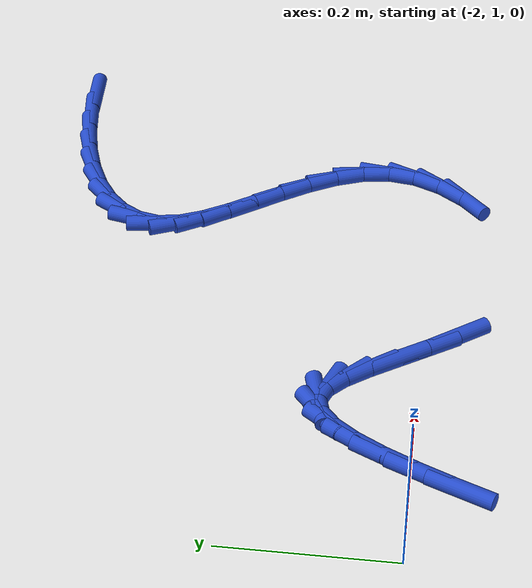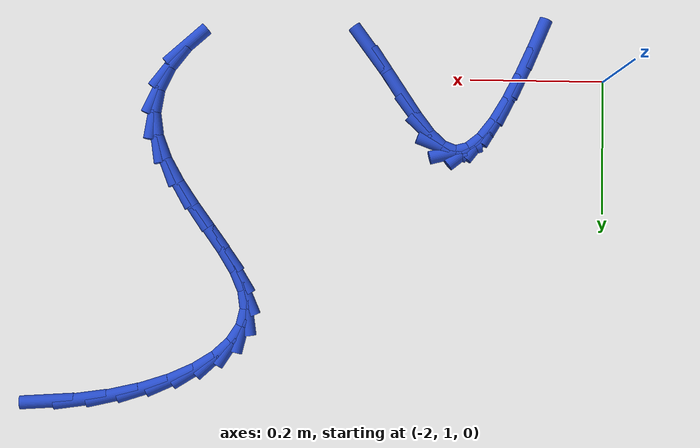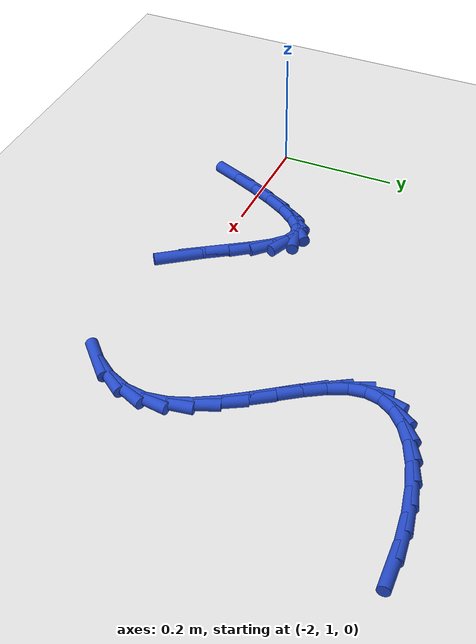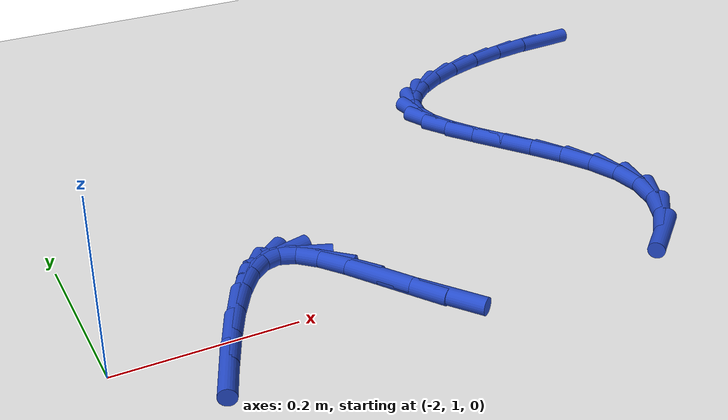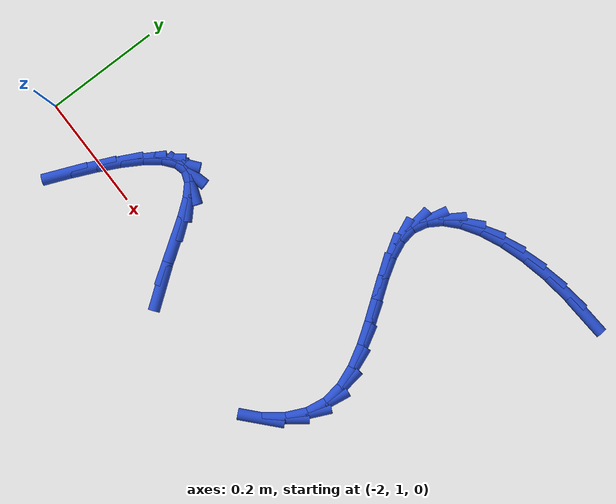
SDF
<sdf version="1.6">
 <world name="default">
  <model name="ground_plane">
   <static>1</static>
   <link name="link">
    <collision name="collision">
     <geometry><plane><normal>0 0 1</normal><size>100 100</size></plane></geometry>
     <surface><friction><ode><mu>100</mu><mu2>50</mu2></ode></friction></surface>
    </collision>
    <visual name="visual">
     <cast_shadows>0</cast_shadows>
     <geometry><plane><normal>0 0 1</normal><size>100 100</size></plane></geometry>
     <material>
      <script><uri>file://media/materials/scripts/gazebo.material</uri><name>Gazebo/WhiteGlow</name></script>
     </material>
    </visual>
   </link>
  </model>
  <model name="line">
   <link name="link_65">
    <pose>-1.1761739126996007 1.4918523326899176 0.01 0 1.57 0.06936947722427453</pose>
    <collision name="collision">
     <geometry><cylinder><radius>0.01</radius><length>0.08</length></cylinder></geometry>
    </collision>
    <visual name="visual">
     <material>
      <script><name>Gazebo/Blue</name><uri>file://media/materials/scripts/gazebo.material</uri></script>
     </material>
     <geometry><cylinder><radius>0.01</radius><length>0.08</length></cylinder></geometry>
    </visual>
   </link>
   <link name="link_66">
    <pose>-1.2253508899219894 1.4884354689383312 0.01 0 1.57 0.14648184305750958</pose>
    <collision name="collision">
     <geometry><cylinder><radius>0.01</radius><length>0.08</length></cylinder></geometry>
    </collision>
    <visual name="visual">
     <material>
      <script><name>Gazebo/Blue</name><uri>file://media/materials/scripts/gazebo.material</uri></script>
     </material>
     <geometry><cylinder><radius>0.01</radius><length>0.08</length></cylinder></geometry>
    </visual>
   </link>
   <link name="link_67">
    <pose>-1.2728362463554914 1.4814295460514344 0.01 0 1.57 0.22779336581764123</pose>
    <collision name="collision">
     <geometry><cylinder><radius>0.01</radius><length>0.08</length></cylinder></geometry>
    </collision>
    <visual name="visual">
     <material>
      <script><name>Gazebo/Blue</name><uri>file://media/materials/scripts/gazebo.material</uri></script>
     </material>
     <geometry><cylinder><radius>0.01</radius><length>0.08</length></cylinder></geometry>
    </visual>
   </link>
   <link name="link_68">
    <pose>-1.3175705340007544 1.4710593798477087 0.01 0 1.57 0.31885221260959346</pose>
    <collision name="collision">
     <geometry><cylinder><radius>0.01</radius><length>0.08</length></cylinder></geometry>
    </collision>
    <visual name="visual">
     <material>
      <script><name>Gazebo/Blue</name><uri>file://media/materials/scripts/gazebo.material</uri></script>
     </material>
     <geometry><cylinder><radius>0.01</radius><length>0.08</length></cylinder></geometry>
    </visual>
   </link>
   <link name="link_69">
    <pose>-1.3584943048584248 1.4575497861456375 0.01 0 1.57 0.42745727808092565</pose>
    <collision name="collision">
     <geometry><cylinder><radius>0.01</radius><length>0.08</length></cylinder></geometry>
    </collision>
    <visual name="visual">
     <material>
      <script><name>Gazebo/Blue</name><uri>file://media/materials/scripts/gazebo.material</uri></script>
     </material>
     <geometry><cylinder><radius>0.01</radius><length>0.08</length></cylinder></geometry>
    </visual>
   </link>
   <link name="link_70">
    <pose>-1.394548110929149 1.4411255807637027 0.01 0 1.57 0.5654033714616854</pose>
    <collision name="collision">
     <geometry><cylinder><radius>0.01</radius><length>0.08</length></cylinder></geometry>
    </collision>
    <visual name="visual">
     <material>
      <script><name>Gazebo/Blue</name><uri>file://media/materials/scripts/gazebo.material</uri></script>
     </material>
     <geometry><cylinder><radius>0.01</radius><length>0.08</length></cylinder></geometry>
    </visual>
   </link>
   <link name="link_71">
    <pose>-1.4246725042135757 1.4220115795203867 0.01 0 1.57 0.7506013424920637</pose>
    <collision name="collision">
     <geometry><cylinder><radius>0.01</radius><length>0.08</length></cylinder></geometry>
    </collision>
    <visual name="visual">
     <material>
      <script><name>Gazebo/Blue</name><uri>file://media/materials/scripts/gazebo.material</uri></script>
     </material>
     <geometry><cylinder><radius>0.01</radius><length>0.08</length></cylinder></geometry>
    </visual>
   </link>
   <link name="link_72">
    <pose>-1.4478080367123507 1.4004325982341723 0.01 0 1.57 1.0061740515455126</pose>
    <collision name="collision">
     <geometry><cylinder><radius>0.01</radius><length>0.08</length></cylinder></geometry>
    </collision>
    <visual name="visual">
     <material>
      <script><name>Gazebo/Blue</name><uri>file://media/materials/scripts/gazebo.material</uri></script>
     </material>
     <geometry><cylinder><radius>0.01</radius><length>0.08</length></cylinder></geometry>
    </visual>
   </link>
   <link name="link_73">
    <pose>-1.462895260426121 1.3766134527235419 0.01 0 1.57 1.343348533426042</pose>
    <collision name="collision">
     <geometry><cylinder><radius>0.01</radius><length>0.08</length></cylinder></geometry>
    </collision>
    <visual name="visual">
     <material>
      <script><name>Gazebo/Blue</name><uri>file://media/materials/scripts/gazebo.material</uri></script>
     </material>
     <geometry><cylinder><radius>0.01</radius><length>0.08</length></cylinder></geometry>
    </visual>
   </link>
   <link name="link_74">
    <pose>-1.4688747273555336 1.3507789588069774 0.01 0 1.57 -1.427825215491451</pose>
    <collision name="collision">
     <geometry><cylinder><radius>0.01</radius><length>0.08</length></cylinder></geometry>
    </collision>
    <visual name="visual">
     <material>
      <script><name>Gazebo/Blue</name><uri>file://media/materials/scripts/gazebo.material</uri></script>
     </material>
     <geometry><cylinder><radius>0.01</radius><length>0.08</length></cylinder></geometry>
    </visual>
   </link>
   <link name="link_75">
    <pose>-1.4648976085603662 1.3231511160605278 0.01 0 1.57 -1.1611023203729032</pose>
    <collision name="collision">
     <geometry><cylinder><radius>0.01</radius><length>0.08</length></cylinder></geometry>
    </collision>
    <visual name="visual">
     <material>
      <script><name>Gazebo/Blue</name><uri>file://media/materials/scripts/gazebo.material</uri></script>
     </material>
     <geometry><cylinder><radius>0.01</radius><length>0.08</length></cylinder></geometry>
    </visual>
   </link>
   <link name="link_76">
    <pose>-1.4522052129256615 1.2939239762816253 0.01 0 1.57 -1.0165413392869251</pose>
    <collision name="collision">
     <geometry><cylinder><radius>0.01</radius><length>0.08</length></cylinder></geometry>
    </collision>
    <visual name="visual">
     <material>
      <script><name>Gazebo/Blue</name><uri>file://media/materials/scripts/gazebo.material</uri></script>
     </material>
     <geometry><cylinder><radius>0.01</radius><length>0.08</length></cylinder></geometry>
    </visual>
   </link>
   <link name="link_77">
    <pose>-1.433234635809409 1.263275602094542 0.01 0 1.57 -0.9501777186585888</pose>
    <collision name="collision">
     <geometry><cylinder><radius>0.01</radius><length>0.08</length></cylinder></geometry>
    </collision>
    <visual name="visual">
     <material>
      <script><name>Gazebo/Blue</name><uri>file://media/materials/scripts/gazebo.material</uri></script>
     </material>
     <geometry><cylinder><radius>0.01</radius><length>0.08</length></cylinder></geometry>
    </visual>
   </link>
   <link name="link_78">
    <pose>-1.4104370430009179 1.2313838679841393 0.01 0 1.57 -0.93795249133482</pose>
    <collision name="collision">
     <geometry><cylinder><radius>0.01</radius><length>0.08</length></cylinder></geometry>
    </collision>
    <visual name="visual">
     <material>
      <script><name>Gazebo/Blue</name><uri>file://media/materials/scripts/gazebo.material</uri></script>
     </material>
     <geometry><cylinder><radius>0.01</radius><length>0.08</length></cylinder></geometry>
    </visual>
   </link>
   <link name="link_79">
    <pose>-1.3862636002894972 1.1984266484352775 0.01 0 1.57 -0.9719316893646319</pose>
    <collision name="collision">
     <geometry><cylinder><radius>0.01</radius><length>0.08</length></cylinder></geometry>
    </collision>
    <visual name="visual">
     <material>
      <script><name>Gazebo/Blue</name><uri>file://media/materials/scripts/gazebo.material</uri></script>
     </material>
     <geometry><cylinder><radius>0.01</radius><length>0.08</length></cylinder></geometry>
    </visual>
   </link>
   <link name="link_80">
    <pose>-1.3631654734644574 1.164581817932819 0.01 0 1.57 -1.0554505420434923</pose>
    <collision name="collision">
     <geometry><cylinder><radius>0.01</radius><length>0.08</length></cylinder></geometry>
    </collision>
    <visual name="visual">
     <material>
      <script><name>Gazebo/Blue</name><uri>file://media/materials/scripts/gazebo.material</uri></script>
     </material>
     <geometry><cylinder><radius>0.01</radius><length>0.08</length></cylinder></geometry>
    </visual>
   </link>
   <link name="link_81">
    <pose>-1.3435938283151074 1.1300272509616236 0.01 0 1.57 -1.201161439066321</pose>
    <collision name="collision">
     <geometry><cylinder><radius>0.01</radius><length>0.08</length></cylinder></geometry>
    </collision>
    <visual name="visual">
     <material>
      <script><name>Gazebo/Blue</name><uri>file://media/materials/scripts/gazebo.material</uri></script>
     </material>
     <geometry><cylinder><radius>0.01</radius><length>0.08</length></cylinder></geometry>
    </visual>
   </link>
   <link name="link_82">
    <pose>-1.3299998306307568 1.0949408220065524 0.01 0 1.57 -1.426072508039061</pose>
    <collision name="collision">
     <geometry><cylinder><radius>0.01</radius><length>0.08</length></cylinder></geometry>
    </collision>
    <visual name="visual">
     <material>
      <script><name>Gazebo/Blue</name><uri>file://media/materials/scripts/gazebo.material</uri></script>
     </material>
     <geometry><cylinder><radius>0.01</radius><length>0.08</length></cylinder></geometry>
    </visual>
   </link>
   <link name="link_83">
    <pose>-1.3248346462007148 1.0595004055524668 0.01 0 1.57 1.416081592257352</pose>
    <collision name="collision">
     <geometry><cylinder><radius>0.01</radius><length>0.08</length></cylinder></geometry>
    </collision>
    <visual name="visual">
     <material>
      <script><name>Gazebo/Blue</name><uri>file://media/materials/scripts/gazebo.material</uri></script>
     </material>
     <geometry><cylinder><radius>0.01</radius><length>0.08</length></cylinder></geometry>
    </visual>
   </link>
   <link name="link_84">
    <pose>-1.3303813141560656 1.023935978075199 0.01 0 1.57 1.1360745891578585</pose>
    <collision name="collision">
     <geometry><cylinder><radius>0.01</radius><length>0.08</length></cylinder></geometry>
    </collision>
    <visual name="visual">
     <material>
      <script><name>Gazebo/Blue</name><uri>file://media/materials/scripts/gazebo.material</uri></script>
     </material>
     <geometry><cylinder><radius>0.01</radius><length>0.08</length></cylinder></geometry>
    </visual>
   </link>
   <link name="link_85">
    <pose>-1.3464973602399817 0.989229176007249 0.01 0 1.57 0.9175855014127284</pose>
    <collision name="collision">
     <geometry><cylinder><radius>0.01</radius><length>0.08</length></cylinder></geometry>
    </collision>
    <visual name="visual">
     <material>
      <script><name>Gazebo/Blue</name><uri>file://media/materials/scripts/gazebo.material</uri></script>
     </material>
     <geometry><cylinder><radius>0.01</radius><length>0.08</length></cylinder></geometry>
    </visual>
   </link>
   <link name="link_86">
    <pose>-1.3712182088606388 0.9569262999950264 0.01 0 1.57 0.735522624468665</pose>
    <collision name="collision">
     <geometry><cylinder><radius>0.01</radius><length>0.08</length></cylinder></geometry>
    </collision>
    <visual name="visual">
     <material>
      <script><name>Gazebo/Blue</name><uri>file://media/materials/scripts/gazebo.material</uri></script>
     </material>
     <geometry><cylinder><radius>0.01</radius><length>0.08</length></cylinder></geometry>
    </visual>
   </link>
   <link name="link_94">
    <pose>-1.6468266499481228 0.9553515584652728 0.01 0 1.57 -0.9336858703000854</pose>
    <collision name="collision">
     <geometry><cylinder><radius>0.01</radius><length>0.08</length></cylinder></geometry>
    </collision>
    <visual name="visual">
     <material>
      <script><name>Gazebo/Blue</name><uri>file://media/materials/scripts/gazebo.material</uri></script>
     </material>
     <geometry><cylinder><radius>0.01</radius><length>0.08</length></cylinder></geometry>
    </visual>
   </link>
   <link name="link_95">
    <pose>-1.672225646861138 0.9896716470353737 0.01 0 1.57 -0.9819618382800813</pose>
    <collision name="collision">
     <geometry><cylinder><radius>0.01</radius><length>0.08</length></cylinder></geometry>
    </collision>
    <visual name="visual">
     <material>
      <script><name>Gazebo/Blue</name><uri>file://media/materials/scripts/gazebo.material</uri></script>
     </material>
     <geometry><cylinder><radius>0.01</radius><length>0.08</length></cylinder></geometry>
    </visual>
   </link>
   <link name="link_96">
    <pose>-1.6955504834965212 1.02459591892779 0.01 0 1.57 -0.9821635960366911</pose>
    <collision name="collision">
     <geometry><cylinder><radius>0.01</radius><length>0.08</length></cylinder></geometry>
    </collision>
    <visual name="visual">
     <material>
      <script><name>Gazebo/Blue</name><uri>file://media/materials/scripts/gazebo.material</uri></script>
     </material>
     <geometry><cylinder><radius>0.01</radius><length>0.08</length></cylinder></geometry>
    </visual>
   </link>
   <link name="link_97">
    <pose>-1.717261665034452 1.0571182705944364 0.01 0 1.57 -0.9220690535449855</pose>
    <collision name="collision">
     <geometry><cylinder><radius>0.01</radius><length>0.08</length></cylinder></geometry>
    </collision>
    <visual name="visual">
     <material>
      <script><name>Gazebo/Blue</name><uri>file://media/materials/scripts/gazebo.material</uri></script>
     </material>
     <geometry><cylinder><radius>0.01</radius><length>0.08</length></cylinder></geometry>
    </visual>
   </link>
   <link name="link_98">
    <pose>-1.7378196966551105 1.0842325984872265 0.01 0 1.57 -0.7551942421328622</pose>
    <collision name="collision">
     <geometry><cylinder><radius>0.01</radius><length>0.08</length></cylinder></geometry>
    </collision>
    <visual name="visual">
     <material>
      <script><name>Gazebo/Blue</name><uri>file://media/materials/scripts/gazebo.material</uri></script>
     </material>
     <geometry><cylinder><radius>0.01</radius><length>0.08</length></cylinder></geometry>
    </visual>
   </link>
   <link name="link_99">
    <pose>-1.7576850835386766 1.1029327990580755 0.01 0 1.57 -0.35808626690594936</pose>
    <collision name="collision">
     <geometry><cylinder><radius>0.01</radius><length>0.08</length></cylinder></geometry>
    </collision>
    <visual name="visual">
     <material>
      <script><name>Gazebo/Blue</name><uri>file://media/materials/scripts/gazebo.material</uri></script>
     </material>
     <geometry><cylinder><radius>0.01</radius><length>0.08</length></cylinder></geometry>
    </visual>
   </link>
   <link name="link_100">
    <pose>-1.7773120774706348 1.110277603946042 0.01 0 1.57 0.24777163980681882</pose>
    <collision name="collision">
     <geometry><cylinder><radius>0.01</radius><length>0.08</length></cylinder></geometry>
    </collision>
    <visual name="visual">
     <material>
      <script><name>Gazebo/Blue</name><uri>file://media/materials/scripts/gazebo.material</uri></script>
     </material>
     <geometry><cylinder><radius>0.01</radius><length>0.08</length></cylinder></geometry>
    </visual>
   </link>
   <link name="link_101">
    <pose>-1.796963905547805 1.105306288485428 0.01 0 1.57 0.680150003090203</pose>
    <collision name="collision">
     <geometry><cylinder><radius>0.01</radius><length>0.08</length></cylinder></geometry>
    </collision>
    <visual name="visual">
     <material>
      <script><name>Gazebo/Blue</name><uri>file://media/materials/scripts/gazebo.material</uri></script>
     </material>
     <geometry><cylinder><radius>0.01</radius><length>0.08</length></cylinder></geometry>
    </visual>
   </link>
   <link name="link_102">
    <pose>-1.8166821634377226 1.089356002348191 0.01 0 1.57 0.9095323358461531</pose>
    <collision name="collision">
     <geometry><cylinder><radius>0.01</radius><length>0.08</length></cylinder></geometry>
    </collision>
    <visual name="visual">
     <material>
      <script><name>Gazebo/Blue</name><uri>file://media/materials/scripts/gazebo.material</uri></script>
     </material>
     <geometry><cylinder><radius>0.01</radius><length>0.08</length></cylinder></geometry>
    </visual>
   </link>
   <link name="link_103">
    <pose>-1.8364960296531703 1.0638926362487882 0.01 0 1.57 1.034064215511082</pose>
    <collision name="collision">
     <geometry><cylinder><radius>0.01</radius><length>0.08</length></cylinder></geometry>
    </collision>
    <visual name="visual">
     <material>
      <script><name>Gazebo/Blue</name><uri>file://media/materials/scripts/gazebo.material</uri></script>
     </material>
     <geometry><cylinder><radius>0.01</radius><length>0.08</length></cylinder></geometry>
    </visual>
   </link>
   <link name="link_104">
    <pose>-1.8564346827069276 1.0303820809016755 0.01 0 1.57 1.1062174620739662</pose>
    <collision name="collision">
     <geometry><cylinder><radius>0.01</radius><length>0.08</length></cylinder></geometry>
    </collision>
    <visual name="visual">
     <material>
      <script><name>Gazebo/Blue</name><uri>file://media/materials/scripts/gazebo.material</uri></script>
     </material>
     <geometry><cylinder><radius>0.01</radius><length>0.08</length></cylinder></geometry>
    </visual>
   </link>
   <link name="link_105">
    <pose>-1.876527301111776 0.9902902270213084 0.01 0 1.57 1.1491848777088305</pose>
    <collision name="collision">
     <geometry><cylinder><radius>0.01</radius><length>0.08</length></cylinder></geometry>
    </collision>
    <visual name="visual">
     <material>
      <script><name>Gazebo/Blue</name><uri>file://media/materials/scripts/gazebo.material</uri></script>
     </material>
     <geometry><cylinder><radius>0.01</radius><length>0.08</length></cylinder></geometry>
    </visual>
   </link>
   <link name="link_106">
    <pose>-1.8968030633804973 0.9450829653221444 0.01 0 1.57 1.1737210931578057</pose>
    <collision name="collision">
     <geometry><cylinder><radius>0.01</radius><length>0.08</length></cylinder></geometry>
    </collision>
    <visual name="visual">
     <material>
      <script><name>Gazebo/Blue</name><uri>file://media/materials/scripts/gazebo.material</uri></script>
     </material>
     <geometry><cylinder><radius>0.01</radius><length>0.08</length></cylinder></geometry>
    </visual>
   </link>
  </model>
 </world>
</sdf>
